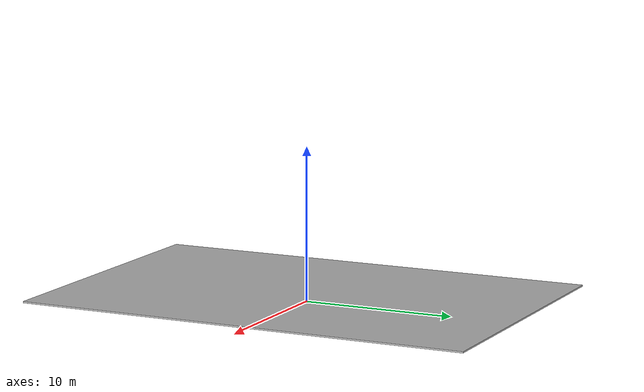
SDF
<?xml version="1.0"?>
<sdf version="1.3">
  <model name="platform_3">
    <pose>0 0 .5 0 0 0</pose>
    <static>true</static>
    <link name="link">
      <collision name="collision">
        <geometry>
          <box>
            <size>20 30 .1</size>
          </box>
        </geometry>
      </collision>

      <visual name="visual">
        <geometry>
          <mesh>
            <uri>model://platform_4/meshes/platform_4.dae</uri>
          </mesh>
        </geometry>
      </visual>
    </link>
  </model>
</sdf>
